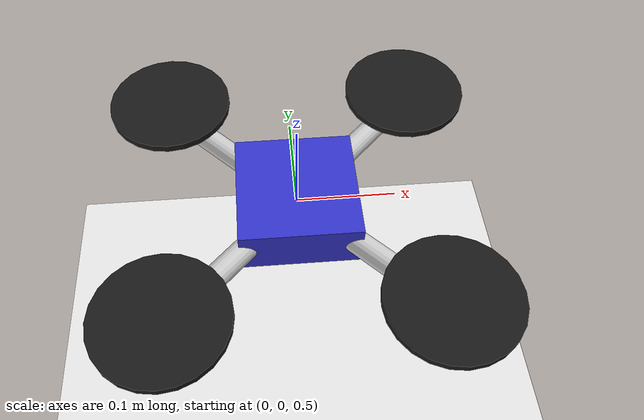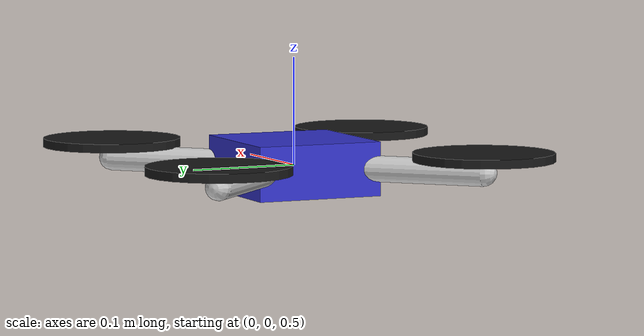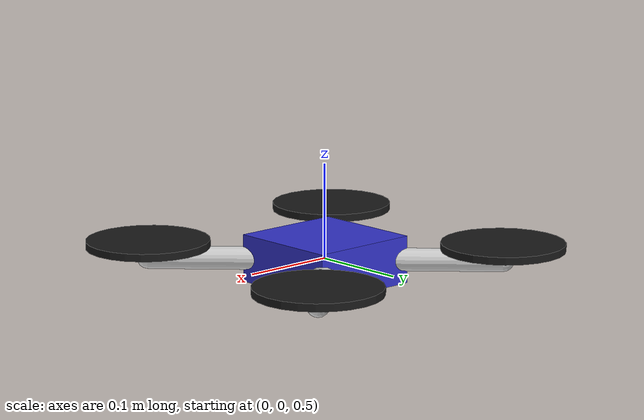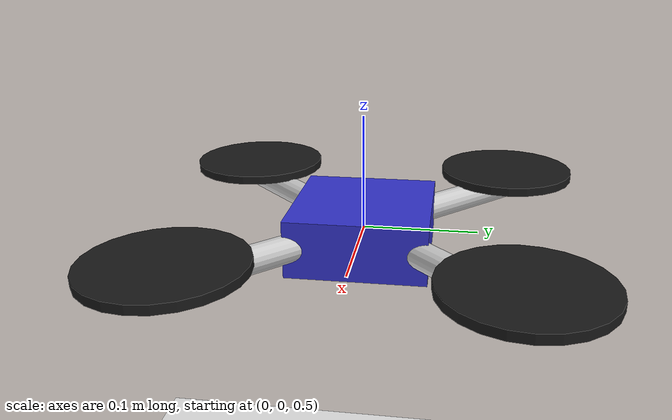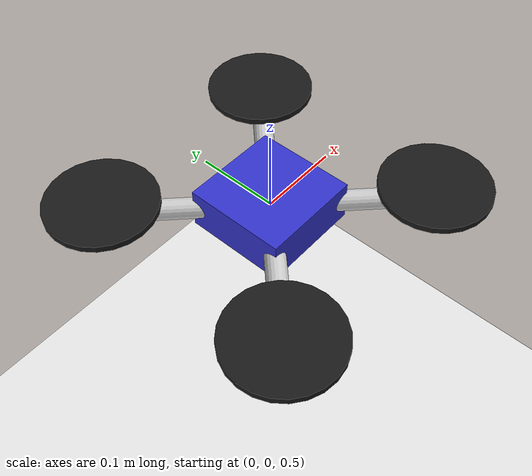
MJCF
<mujoco model="quadcopter">

  <option timestep="0.002" gravity="0 0 -9.81" integrator="RK4"/>

  <default>
    <geom rgba="0.8 0.8 0.8 1" contype="1" conaffinity="1"/>
  </default>

  <worldbody>
    <light pos="-5 0 10" dir="0 0 -1" diffuse="0.8 0.8 0.8"/>
    <light pos="+5 0 10" dir="0 0 -1" diffuse="0.8 0.8 0.8"/>
    <light pos="0 -10 10" dir="0 0 -1" diffuse="0.8 0.8 0.8"/>
    <light pos="0 +10 10" dir="0 0 -1" diffuse="0.8 0.8 0.8"/>
    <geom name="floor" type="plane" size="20 20 0.1" rgba="0.9 0.9 0.9 1"/>

    <body name="quad" pos="0 0 0.5">
      <freejoint name="root"/>

      <!-- central frame -->
      <geom name="body" type="box"
            size="0.06 0.06 0.025"
            mass="0.5"
            rgba="0.2 0.2 0.8 1"/>

      <!-- 4 arms: X configuration at ±45° -->
      <geom name="arm_fr" type="capsule" fromto="0 0 0  0.13 -0.13 0" size="0.012" mass="0.05"/>
      <geom name="arm_fl" type="capsule" fromto="0 0 0  0.13  0.13 0" size="0.012" mass="0.05"/>
      <geom name="arm_br" type="capsule" fromto="0 0 0 -0.13 -0.13 0" size="0.012" mass="0.05"/>
      <geom name="arm_bl" type="capsule" fromto="0 0 0 -0.13  0.13 0" size="0.012" mass="0.05"/>

      <!-- rotors (visual disks) -->
      <geom name="prop_fr" type="cylinder" pos=" 0.13 -0.13 0.015" size="0.065 0.004" mass="0.025" rgba="0.1 0.1 0.1 1"/>
      <geom name="prop_fl" type="cylinder" pos=" 0.13  0.13 0.015" size="0.065 0.004" mass="0.025" rgba="0.1 0.1 0.1 1"/>
      <geom name="prop_br" type="cylinder" pos="-0.13 -0.13 0.015" size="0.065 0.004" mass="0.025" rgba="0.1 0.1 0.1 1"/>
      <geom name="prop_bl" type="cylinder" pos="-0.13  0.13 0.015" size="0.065 0.004" mass="0.025" rgba="0.1 0.1 0.1 1"/>

      <site name="s_fr" pos=" 0.13 -0.13 0"/>   <!-- CW  -->
      <site name="s_fl" pos=" 0.13  0.13 0"/>   <!-- CCW -->
      <site name="s_br" pos="-0.13 -0.13 0"/>   <!-- CCW -->
      <site name="s_bl" pos="-0.13  0.13 0"/>   <!-- CW  -->

      <!-- IMU reference point at CoM -->
      <site name="imu" pos="0 0 0" size="0.005"/>

    </body>
  </worldbody>

  <actuator>
    <!--
      ctrl ∈ [0, 4] N per motor.
      Hover thrust per rotor ≈ total_mass * 9.81 / 4 ≈ 0.73 * 9.81 / 4 ≈ 1.79 N
      so ctrlrange 0..4 gives enough headroom.
    -->
    <motor name="m_fr" site="s_fr" gear="0 0 1 0 0 -0.012" ctrllimited="true" ctrlrange="0 4"/>
    <motor name="m_fl" site="s_fl" gear="0 0 1 0 0  0.012" ctrllimited="true" ctrlrange="0 4"/>
    <motor name="m_br" site="s_br" gear="0 0 1 0 0  0.012" ctrllimited="true" ctrlrange="0 4"/>
    <motor name="m_bl" site="s_bl" gear="0 0 1 0 0 -0.012" ctrllimited="true" ctrlrange="0 4"/>
  </actuator>

  <sensor>
    <gyro         name="gyro"  site="imu"/>
    <accelerometer name="accel" site="imu"/>
    <framequat    name="quat"  objtype="site" objname="imu"/>
    <framepos     name="pos"   objtype="site" objname="imu"/>
    <framelinvel  name="vel"   objtype="site" objname="imu"/>
  </sensor>

</mujoco>
